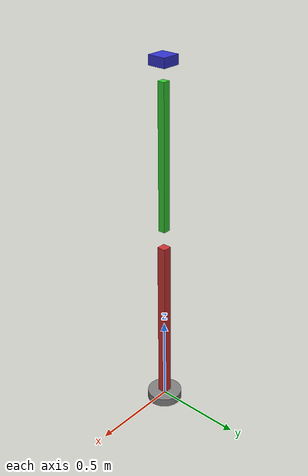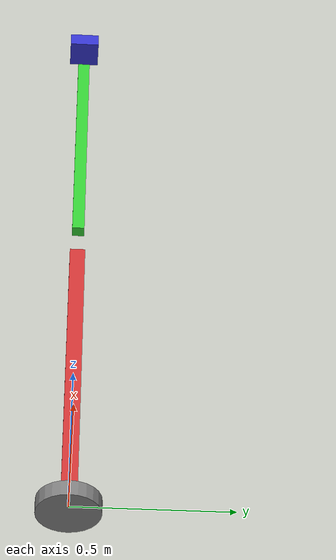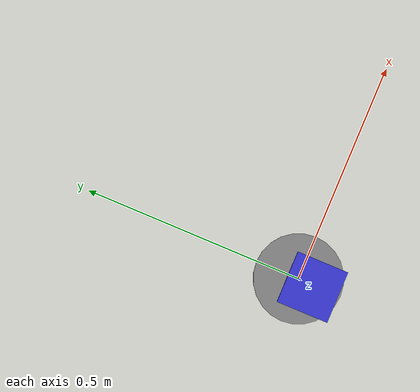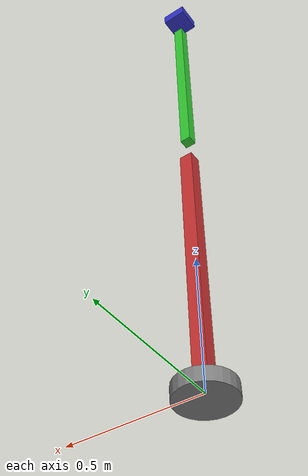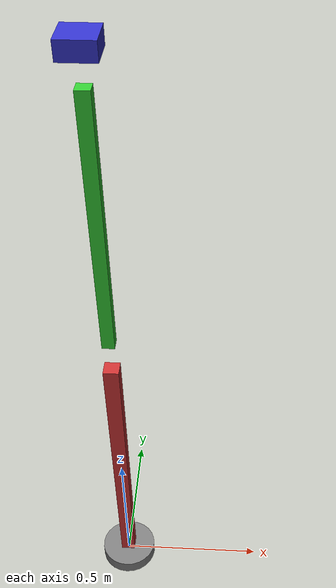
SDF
<?xml version='1.0' ?>
<sdf version='1.12'>
  <model name='simple_arm'>
    <link name='base_link'>
      <inertial>
        <mass>5</mass>
        <inertia>
          <ixx>0.1</ixx><iyy>0.1</iyy><izz>0.1</izz>
          <ixy>0</ixy><ixz>0</ixz><iyz>0</iyz>
        </inertia>
      </inertial>
      <collision name='collision'>
        <geometry>
          <cylinder>
            <radius>0.1</radius>
            <length>0.05</length>
          </cylinder>
        </geometry>
      </collision>
      <visual name='visual'>
        <geometry>
          <cylinder>
            <radius>0.1</radius>
            <length>0.05</length>
          </cylinder>
        </geometry>
        <material>
          <ambient>0.5 0.5 0.5 1</ambient>
          <diffuse>0.5 0.5 0.5 1</diffuse>
        </material>
      </visual>
    </link>

    <link name='upper_arm'>
      <pose>0 0 0.5 0 0 0</pose>
      <inertial>
        <mass>2</mass>
      </inertial>
      <collision name='collision'>
        <geometry>
          <box>
            <size>0.05 0.05 1.0</size>
          </box>
        </geometry>
      </collision>
      <visual name='visual'>
        <geometry>
          <box>
            <size>0.05 0.05 1.0</size>
          </box>
        </geometry>
        <material>
          <ambient>0.8 0.2 0.2 1</ambient>
          <diffuse>0.8 0.2 0.2 1</diffuse>
        </material>
      </visual>
    </link>

    <link name='lower_arm'>
      <pose>0 0 1.5 0 0 0</pose>
      <inertial>
        <mass>1.5</mass>
      </inertial>
      <collision name='collision'>
        <geometry>
          <box>
            <size>0.04 0.04 0.8</size>
          </box>
        </geometry>
      </collision>
      <visual name='visual'>
        <geometry>
          <box>
            <size>0.04 0.04 0.8</size>
          </box>
        </geometry>
        <material>
          <ambient>0.2 0.8 0.2 1</ambient>
          <diffuse>0.2 0.8 0.2 1</diffuse>
        </material>
      </visual>
      <sensor name='force_torque' type='force_torque'>
        <update_rate>100</update_rate>
      </sensor>
    </link>

    <link name='gripper'>
      <pose>0 0 2.0 0 0 0</pose>
      <inertial>
        <mass>0.5</mass>
      </inertial>
      <collision name='collision'>
        <geometry>
          <box>
            <size>0.1 0.1 0.05</size>
          </box>
        </geometry>
      </collision>
      <visual name='visual'>
        <geometry>
          <box>
            <size>0.1 0.1 0.05</size>
          </box>
        </geometry>
        <material>
          <ambient>0.2 0.2 0.8 1</ambient>
          <diffuse>0.2 0.2 0.8 1</diffuse>
        </material>
      </visual>
    </link>

    <joint name='shoulder_joint' type='revolute'>
      <parent>base_link</parent>
      <child>upper_arm</child>
      <axis>
        <xyz>0 1 0</xyz>
        <limit>
          <lower>-1.57</lower>
          <upper>1.57</upper>
          <effort>100</effort>
          <velocity>1.0</velocity>
        </limit>
        <dynamics>
          <damping>0.5</damping>
          <friction>0.1</friction>
        </dynamics>
      </axis>
    </joint>

    <joint name='elbow_joint' type='revolute'>
      <parent>upper_arm</parent>
      <child>lower_arm</child>
      <axis>
        <xyz>0 1 0</xyz>
        <limit>
          <lower>-2.35</lower>
          <upper>0</upper>
          <effort>80</effort>
          <velocity>1.5</velocity>
        </limit>
        <dynamics>
          <damping>0.3</damping>
        </dynamics>
      </axis>
    </joint>

    <joint name='wrist_joint' type='revolute'>
      <parent>lower_arm</parent>
      <child>gripper</child>
      <axis>
        <xyz>0 0 1</xyz>
        <limit>
          <lower>-3.14</lower>
          <upper>3.14</upper>
          <effort>50</effort>
        </limit>
      </axis>
    </joint>

    <frame name='tool_frame' attached_to='gripper'>
      <pose>0 0 0.025 0 0 0</pose>
    </frame>

  </model>
</sdf>
